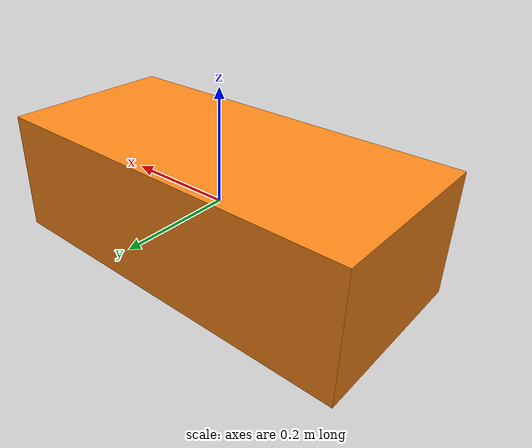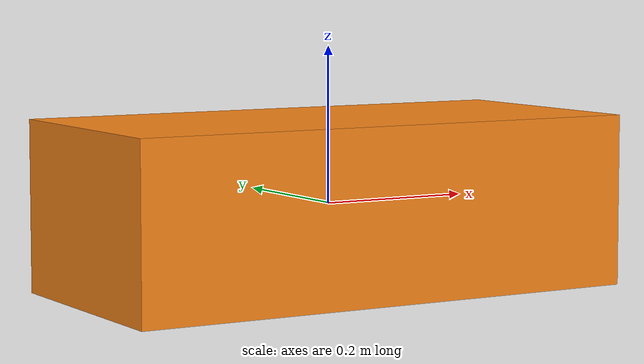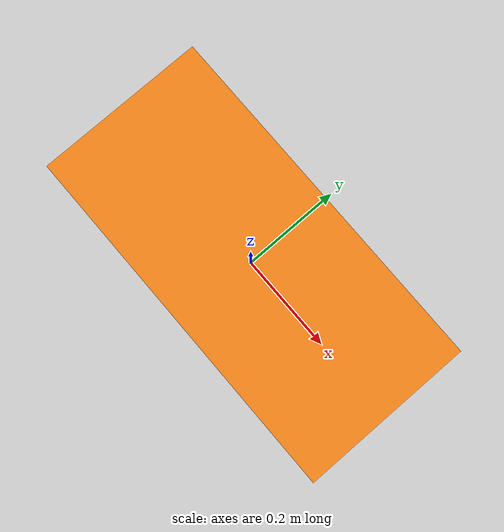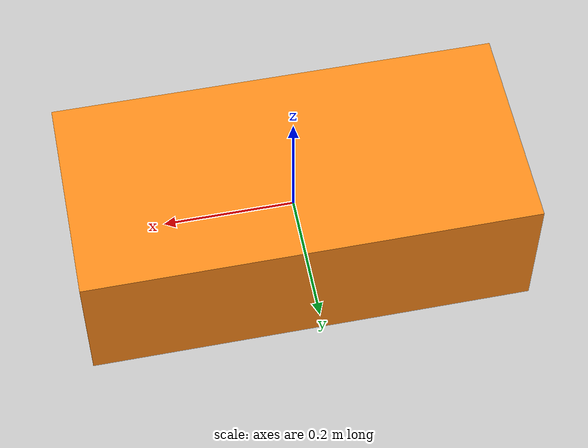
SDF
<?xml version="1.0" ?>
<sdf version="1.10">
  <model name="payload_box">
    <static>false</static>
    <link name="payload_link">
      <gravity>false</gravity>
      <inertial>
        <mass>2.0</mass>
        <inertia>
          <ixx>0.05</ixx>
          <iyy>0.12</iyy>
          <izz>0.13</izz>
          <ixy>0.0</ixy>
          <ixz>0.0</ixz>
          <iyz>0.0</iyz>
        </inertia>
      </inertial>
      <collision name="collision">
        <geometry>
          <box>
            <size>0.56 0.26 0.18</size>
          </box>
        </geometry>
      </collision>
      <visual name="visual">
        <geometry>
          <box>
            <size>0.68 0.32 0.22</size>
          </box>
        </geometry>
        <material>
          <ambient>0.98 0.53 0.10 1</ambient>
          <diffuse>0.98 0.53 0.10 1</diffuse>
          <specular>0.20 0.12 0.04 1</specular>
          <emissive>0.45 0.18 0.03 1</emissive>
        </material>
        <cast_shadows>true</cast_shadows>
      </visual>
    </link>
  </model>
</sdf>
